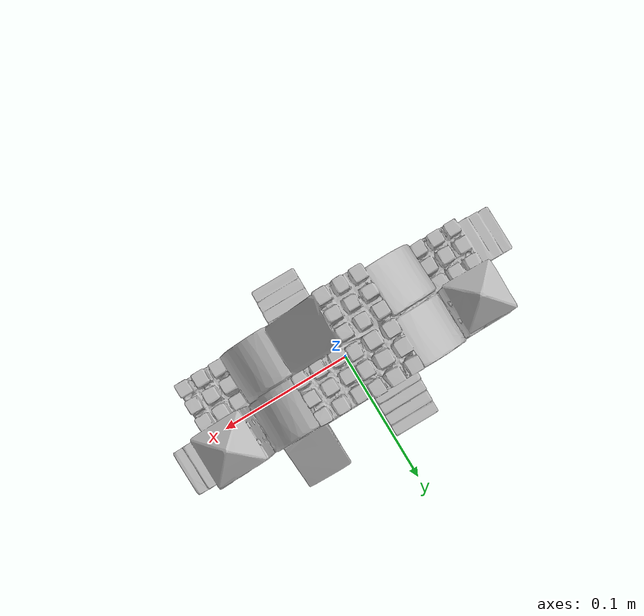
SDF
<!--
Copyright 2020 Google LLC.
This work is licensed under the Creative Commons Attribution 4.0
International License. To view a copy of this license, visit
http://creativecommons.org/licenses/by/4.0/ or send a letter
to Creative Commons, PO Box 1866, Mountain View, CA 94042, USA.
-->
<?xml version="1.0" ?>
<sdf version="1.6">
  <model name="CREATIVE_BLOCKS_35_MM">
    <link name="link_0">
      <visual name="visual">
        <geometry>
          <mesh>
            <uri>meshes/model.obj</uri>
          </mesh>
        </geometry>
      </visual>
      <collision name="collision_0">
        <geometry>
          <mesh>
            <uri>meshes/model.obj</uri>
          </mesh>
        </geometry>
      </collision>
    </link>
  </model>
</sdf>
